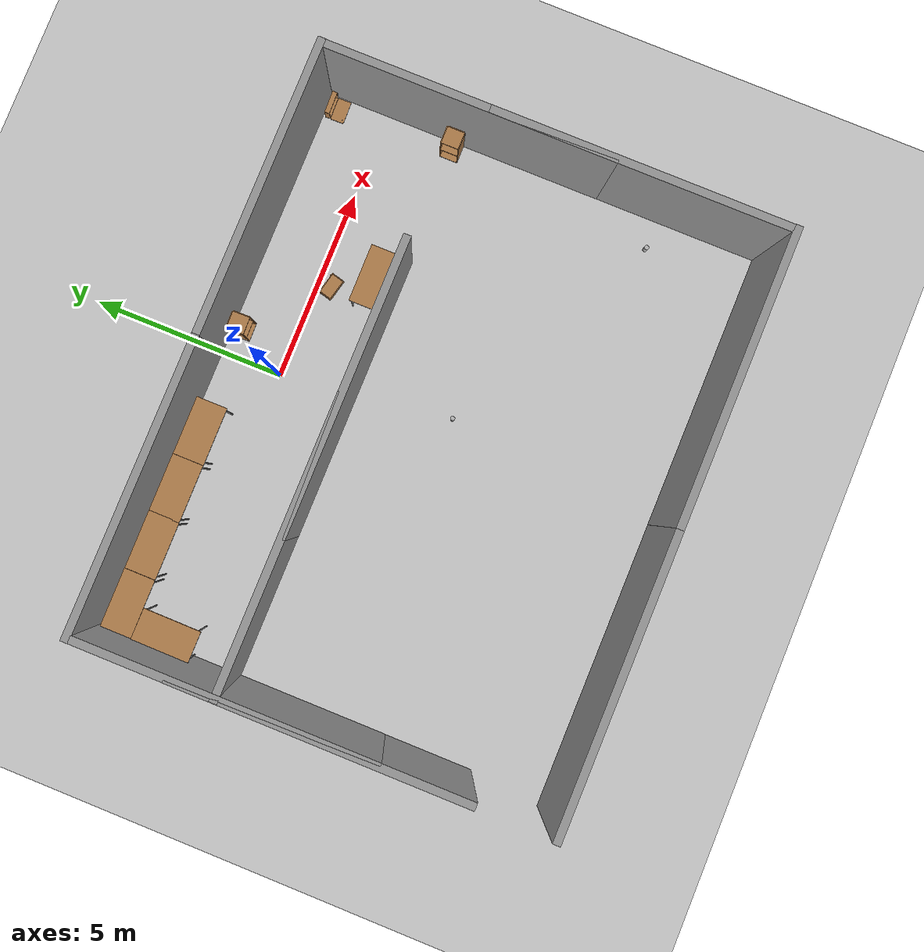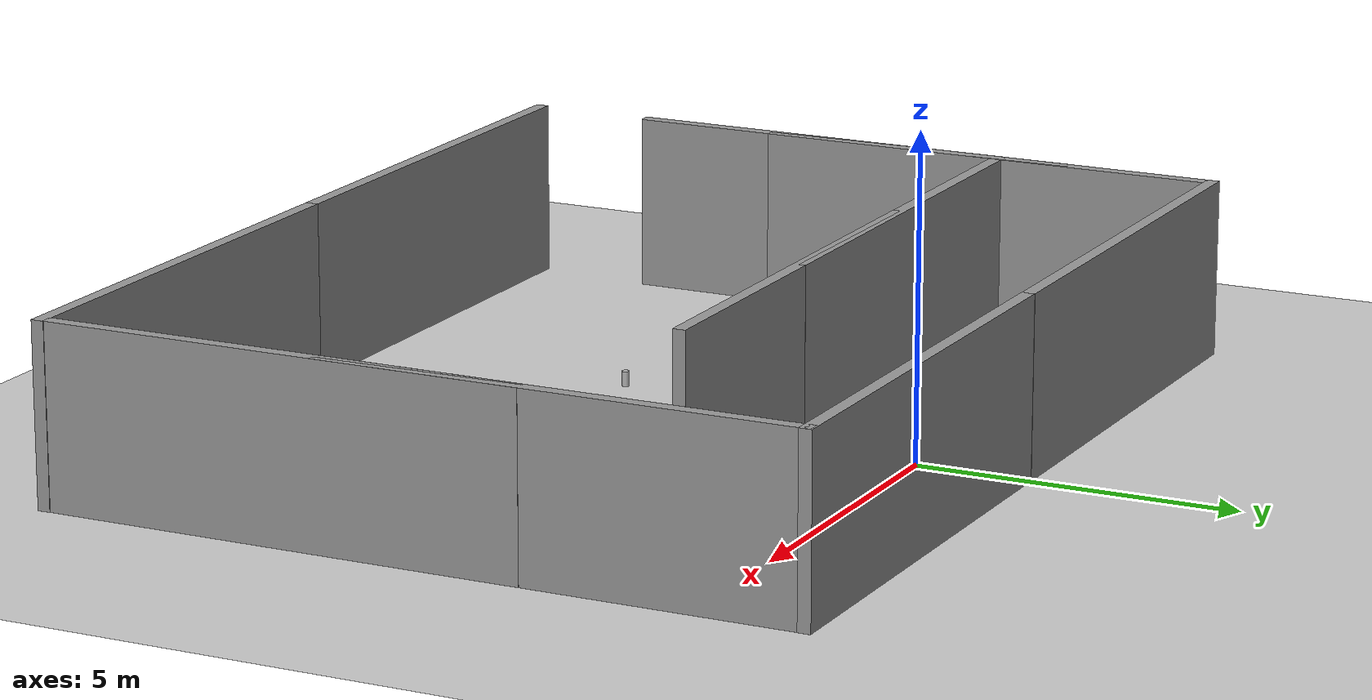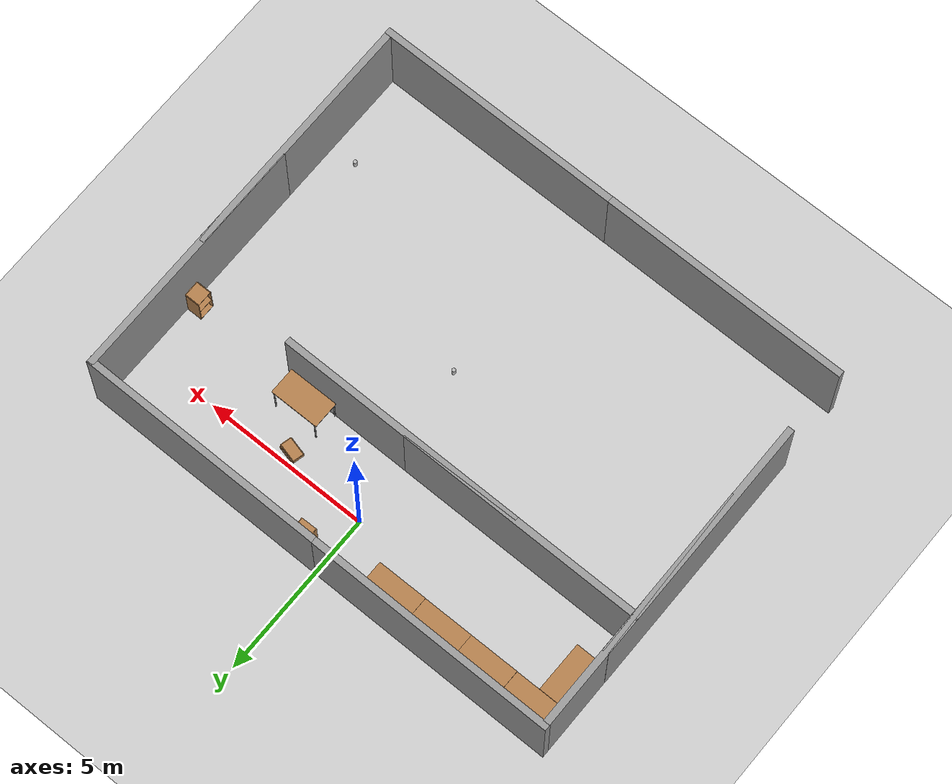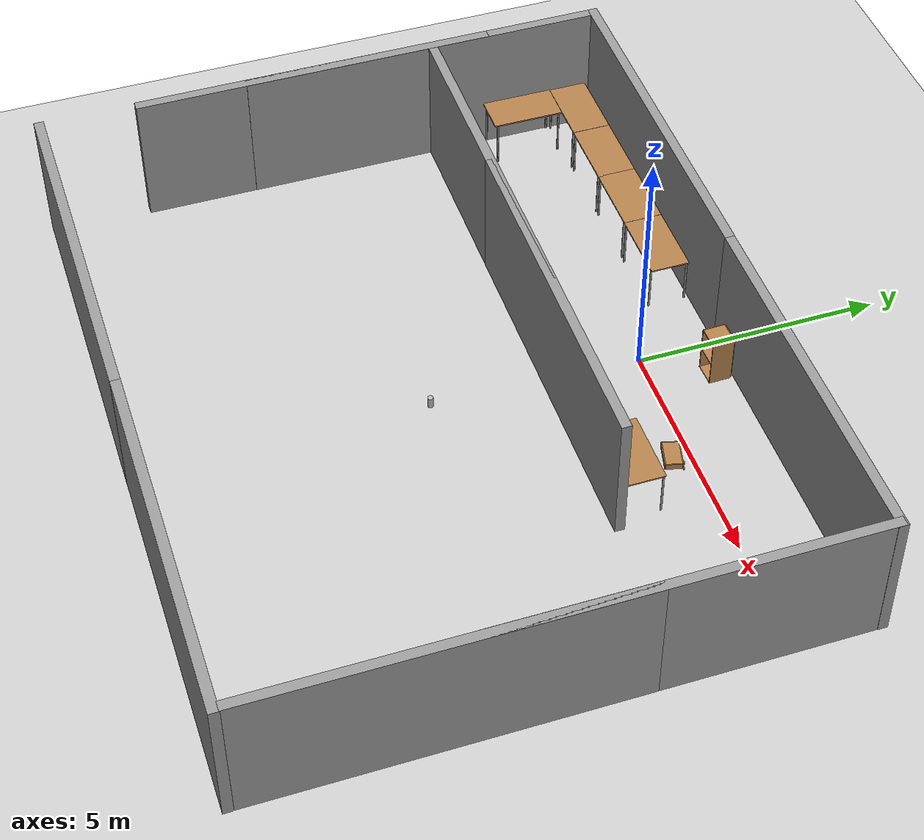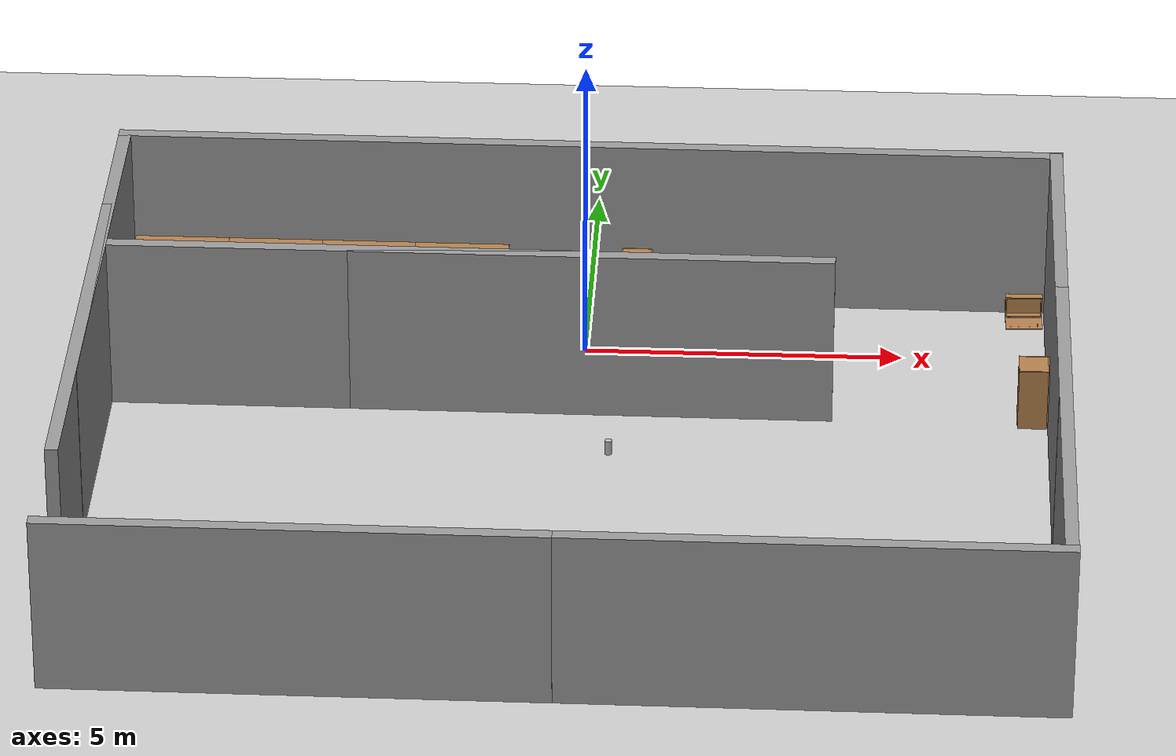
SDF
<sdf version="1.6">
 <world name="default">
  <light name="sun" type="directional">
   <pose>0 0 10 0 -0 0</pose>
   <diffuse>0.8 0.8 0.8 1</diffuse>
   <specular>0.2 0.2 0.2 1</specular>
   <attenuation>
    <range>1000</range>
    <constant>0.9</constant>
    <linear>0.01</linear>
    <quadratic>0.001</quadratic>
   </attenuation>
   <direction>-0.5 0.1 -0.9</direction>
  </light>
  <model name="ground_plane">
   <static>1</static>
   <link name="link">
    <collision name="collision">
     <geometry><plane><normal>0 0 1</normal><size>100 100</size></plane></geometry>
     <surface>
      <contact><collide_bitmask>65535</collide_bitmask></contact>
      <friction><ode><mu>100</mu><mu2>50</mu2></ode></friction>
     </surface>
    </collision>
    <visual name="visual">
     <cast_shadows>0</cast_shadows>
     <geometry><plane><normal>0 0 1</normal><size>100 100</size></plane></geometry>
     <material>
      <script><uri>file://media/materials/scripts/gazebo.material</uri><name>Gazebo/Grey</name></script>
     </material>
    </visual>
   </link>
  </model>
  <gravity>0 0 -9.8</gravity>
  <magnetic_field>6e-06 2.3e-05 -4.2e-05</magnetic_field>
  <atmosphere type="adiabatic"/>
  <physics name="default_physics" default="0" type="ode">
   <max_step_size>0.001</max_step_size>
   <real_time_factor>1</real_time_factor>
   <real_time_update_rate>1000</real_time_update_rate>
  </physics>
  <scene><ambient>0.4 0.4 0.4 1</ambient><background>0.7 0.7 0.7 1</background><shadows>1</shadows></scene>
  <spherical_coordinates>
   <surface_model>EARTH_WGS84</surface_model>
   <latitude_deg>0</latitude_deg>
   <longitude_deg>0</longitude_deg>
   <elevation>0</elevation>
   <heading_deg>0</heading_deg>
  </spherical_coordinates>
  <model name="beer">
   <link name="link">
    <pose>0 0 0.115 0 -0 0</pose>
    <inertial>
     <mass>0.39</mass>
     <inertia><ixx>0.00058</ixx><ixy>0</ixy><ixz>0</ixz><iyy>0.00058</iyy><iyz>0</iyz><izz>0.00019</izz></inertia>
    </inertial>
    <collision name="collision">
     <geometry><cylinder><radius>0.055</radius><length>0.23</length></cylinder></geometry>
    </collision>
    <visual name="visual">
     <geometry><cylinder><radius>0.055</radius><length>0.23</length></cylinder></geometry>
     <material>
      <script>
       <uri>model://beer/materials/scripts</uri>
       <uri>model://beer/materials/textures</uri>
       <name>Beer/Diffuse</name>
      </script>
     </material>
    </visual>
   </link>
   <pose>0.549078 -4.45967 0.774999 6e-06 1.8e-05 0.024753</pose>
  </model>
  <model name="grey_wall">
   <static>1</static>
   <link name="link">
    <pose>0 0 1.4 0 -0 0</pose>
    <collision name="collision"><geometry><box><size>7.5 0.2 2.8</size></box></geometry></collision>
    <visual name="visual">
     <cast_shadows>0</cast_shadows>
     <geometry><box><size>7.5 0.2 2.8</size></box></geometry>
     <material>
      <script>
       <uri>model://grey_wall/materials/scripts</uri>
       <uri>model://grey_wall/materials/textures</uri>
       <name>vrc/grey_wall</name>
      </script>
     </material>
    </visual>
   </link>
   <pose>-7.41366 -4.39541 0 0 -0 1.57193</pose>
  </model>
  <model name="grey_wall_clone">
   <static>1</static>
   <link name="link">
    <pose>0 0 1.4 0 -0 0</pose>
    <collision name="collision"><geometry><box><size>7.5 0.2 2.8</size></box></geometry></collision>
    <visual name="visual">
     <cast_shadows>0</cast_shadows>
     <geometry><box><size>7.5 0.2 2.8</size></box></geometry>
     <material>
      <script>
       <uri>model://grey_wall/materials/scripts</uri>
       <uri>model://grey_wall/materials/textures</uri>
       <name>vrc/grey_wall</name>
      </script>
     </material>
    </visual>
   </link>
   <pose>7.37096 -6.3197 0 0 -0 1.57193</pose>
  </model>
  <model name="grey_wall_clone_0">
   <static>1</static>
   <link name="link">
    <pose>0 0 1.4 0 -0 0</pose>
    <collision name="collision"><geometry><box><size>7.5 0.2 2.8</size></box></geometry></collision>
    <visual name="visual">
     <cast_shadows>0</cast_shadows>
     <geometry><box><size>7.5 0.2 2.8</size></box></geometry>
     <material>
      <script>
       <uri>model://grey_wall/materials/scripts</uri>
       <uri>model://grey_wall/materials/textures</uri>
       <name>vrc/grey_wall</name>
      </script>
     </material>
    </visual>
   </link>
   <pose>-3.76241 -10.1067 0 0 0 -0.004205</pose>
  </model>
  <model name="grey_wall_clone_0_clone">
   <static>1</static>
   <link name="link">
    <pose>0 0 1.4 0 -0 0</pose>
    <collision name="collision"><geometry><box><size>7.5 0.2 2.8</size></box></geometry></collision>
    <visual name="visual">
     <cast_shadows>0</cast_shadows>
     <geometry><box><size>7.5 0.2 2.8</size></box></geometry>
     <material>
      <script>
       <uri>model://grey_wall/materials/scripts</uri>
       <uri>model://grey_wall/materials/textures</uri>
       <name>vrc/grey_wall</name>
      </script>
     </material>
    </visual>
   </link>
   <pose>3.73447 -10.1357 0 0 0 -0.004205</pose>
  </model>
  <model name="grey_wall_clone_1">
   <static>1</static>
   <link name="link">
    <pose>0 0 1.4 0 -0 0</pose>
    <collision name="collision"><geometry><box><size>7.5 0.2 2.8</size></box></geometry></collision>
    <visual name="visual">
     <cast_shadows>0</cast_shadows>
     <geometry><box><size>7.5 0.2 2.8</size></box></geometry>
     <material>
      <script>
       <uri>model://grey_wall/materials/scripts</uri>
       <uri>model://grey_wall/materials/textures</uri>
       <name>vrc/grey_wall</name>
      </script>
     </material>
    </visual>
   </link>
   <pose>-7.41164 -2.10091 0 0 -0 1.57193</pose>
  </model>
  <model name="grey_wall_clone_clone">
   <static>1</static>
   <link name="link">
    <pose>0 0 1.4 0 -0 0</pose>
    <collision name="collision"><geometry><box><size>7.5 0.2 2.8</size></box></geometry></collision>
    <visual name="visual">
     <cast_shadows>0</cast_shadows>
     <geometry><box><size>7.5 0.2 2.8</size></box></geometry>
     <material>
      <script>
       <uri>model://grey_wall/materials/scripts</uri>
       <uri>model://grey_wall/materials/textures</uri>
       <name>vrc/grey_wall</name>
      </script>
     </material>
    </visual>
   </link>
   <pose>7.36311 -2.01977 0 0 -0 1.57193</pose>
  </model>
  <model name="grey_wall_clone_0_clone_0">
   <static>1</static>
   <link name="link">
    <pose>0 0 1.4 0 -0 0</pose>
    <collision name="collision"><geometry><box><size>7.5 0.2 2.8</size></box></geometry></collision>
    <visual name="visual">
     <cast_shadows>0</cast_shadows>
     <geometry><box><size>7.5 0.2 2.8</size></box></geometry>
     <material>
      <script>
       <uri>model://grey_wall/materials/scripts</uri>
       <uri>model://grey_wall/materials/textures</uri>
       <name>vrc/grey_wall</name>
      </script>
     </material>
    </visual>
   </link>
   <pose>-3.7582 -1.88238 0 0 0 -0.004205</pose>
  </model>
  <model name="grey_wall_clone_0_clone_0_clone">
   <static>1</static>
   <link name="link">
    <pose>0 0 1.4 0 -0 0</pose>
    <collision name="collision"><geometry><box><size>7.5 0.2 2.8</size></box></geometry></collision>
    <visual name="visual">
     <cast_shadows>0</cast_shadows>
     <geometry><box><size>7.5 0.2 2.8</size></box></geometry>
     <material>
      <script>
       <uri>model://grey_wall/materials/scripts</uri>
       <uri>model://grey_wall/materials/textures</uri>
       <name>vrc/grey_wall</name>
      </script>
     </material>
    </visual>
   </link>
   <pose>0.167951 -1.90145 0 0 0 -0.004205</pose>
  </model>
  <model name="grey_wall_clone_0_clone_0_clone_0">
   <static>1</static>
   <link name="link">
    <pose>0 0 1.4 0 -0 0</pose>
    <collision name="collision"><geometry><box><size>7.5 0.2 2.8</size></box></geometry></collision>
    <visual name="visual">
     <cast_shadows>0</cast_shadows>
     <geometry><box><size>7.5 0.2 2.8</size></box></geometry>
     <material>
      <script>
       <uri>model://grey_wall/materials/scripts</uri>
       <uri>model://grey_wall/materials/textures</uri>
       <name>vrc/grey_wall</name>
      </script>
     </material>
    </visual>
   </link>
   <pose>-3.76819 1.7103 0 0 0 -0.004205</pose>
  </model>
  <model name="grey_wall_clone_0_clone_0_clone_1">
   <static>1</static>
   <link name="link">
    <pose>0 0 1.4 0 -0 0</pose>
    <collision name="collision"><geometry><box><size>7.5 0.2 2.8</size></box></geometry></collision>
    <visual name="visual">
     <cast_shadows>0</cast_shadows>
     <geometry><box><size>7.5 0.2 2.8</size></box></geometry>
     <material>
      <script>
       <uri>model://grey_wall/materials/scripts</uri>
       <uri>model://grey_wall/materials/textures</uri>
       <name>vrc/grey_wall</name>
      </script>
     </material>
    </visual>
   </link>
   <pose>3.71597 1.67408 0 0 0 -0.004205</pose>
  </model>
  <model name="table">
   <static>1</static>
   <link name="link">
    <collision name="surface">
     <pose>0 0 1 0 -0 0</pose>
     <geometry><box><size>1.5 0.8 0.03</size></box></geometry>
     <surface><friction><ode><mu>0.6</mu><mu2>0.6</mu2></ode></friction></surface>
    </collision>
    <visual name="visual1">
     <pose>0 0 1 0 -0 0</pose>
     <geometry><box><size>1.5 0.8 0.03</size></box></geometry>
     <material>
      <script><uri>file://media/materials/scripts/gazebo.material</uri><name>Gazebo/Wood</name></script>
     </material>
    </visual>
    <collision name="front_left_leg">
     <pose>0.68 0.38 0.5 0 -0 0</pose>
     <geometry><cylinder><radius>0.02</radius><length>1</length></cylinder></geometry>
    </collision>
    <visual name="front_left_leg">
     <pose>0.68 0.38 0.5 0 -0 0</pose>
     <geometry><cylinder><radius>0.02</radius><length>1</length></cylinder></geometry>
     <material>
      <script><uri>file://media/materials/scripts/gazebo.material</uri><name>Gazebo/Grey</name></script>
     </material>
    </visual>
    <collision name="front_right_leg">
     <pose>0.68 -0.38 0.5 0 -0 0</pose>
     <geometry><cylinder><radius>0.02</radius><length>1</length></cylinder></geometry>
    </collision>
    <visual name="front_right_leg">
     <pose>0.68 -0.38 0.5 0 -0 0</pose>
     <geometry><cylinder><radius>0.02</radius><length>1</length></cylinder></geometry>
     <material>
      <script><uri>file://media/materials/scripts/gazebo.material</uri><name>Gazebo/Grey</name></script>
     </material>
    </visual>
    <collision name="back_right_leg">
     <pose>-0.68 -0.38 0.5 0 -0 0</pose>
     <geometry><cylinder><radius>0.02</radius><length>1</length></cylinder></geometry>
    </collision>
    <visual name="back_right_leg">
     <pose>-0.68 -0.38 0.5 0 -0 0</pose>
     <geometry><cylinder><radius>0.02</radius><length>1</length></cylinder></geometry>
     <material>
      <script><uri>file://media/materials/scripts/gazebo.material</uri><name>Gazebo/Grey</name></script>
     </material>
    </visual>
    <collision name="back_left_leg">
     <pose>-0.68 0.38 0.5 0 -0 0</pose>
     <geometry><cylinder><radius>0.02</radius><length>1</length></cylinder></geometry>
    </collision>
    <visual name="back_left_leg">
     <pose>-0.68 0.38 0.5 0 -0 0</pose>
     <geometry><cylinder><radius>0.02</radius><length>1</length></cylinder></geometry>
     <material>
      <script><uri>file://media/materials/scripts/gazebo.material</uri><name>Gazebo/Grey</name></script>
     </material>
    </visual>
   </link>
   <pose>-6.53226 1.12972 0.030085 0 -0 0</pose>
  </model>
  <model name="table_clone">
   <static>1</static>
   <link name="link">
    <collision name="surface">
     <pose>0 0 1 0 -0 0</pose>
     <geometry><box><size>1.5 0.8 0.03</size></box></geometry>
     <surface><friction><ode><mu>0.6</mu><mu2>0.6</mu2></ode></friction></surface>
    </collision>
    <visual name="visual1">
     <pose>0 0 1 0 -0 0</pose>
     <geometry><box><size>1.5 0.8 0.03</size></box></geometry>
     <material>
      <script><uri>file://media/materials/scripts/gazebo.material</uri><name>Gazebo/Wood</name></script>
     </material>
    </visual>
    <collision name="front_left_leg">
     <pose>0.68 0.38 0.5 0 -0 0</pose>
     <geometry><cylinder><radius>0.02</radius><length>1</length></cylinder></geometry>
    </collision>
    <visual name="front_left_leg">
     <pose>0.68 0.38 0.5 0 -0 0</pose>
     <geometry><cylinder><radius>0.02</radius><length>1</length></cylinder></geometry>
     <material>
      <script><uri>file://media/materials/scripts/gazebo.material</uri><name>Gazebo/Grey</name></script>
     </material>
    </visual>
    <collision name="front_right_leg">
     <pose>0.68 -0.38 0.5 0 -0 0</pose>
     <geometry><cylinder><radius>0.02</radius><length>1</length></cylinder></geometry>
    </collision>
    <visual name="front_right_leg">
     <pose>0.68 -0.38 0.5 0 -0 0</pose>
     <geometry><cylinder><radius>0.02</radius><length>1</length></cylinder></geometry>
     <material>
      <script><uri>file://media/materials/scripts/gazebo.material</uri><name>Gazebo/Grey</name></script>
     </material>
    </visual>
    <collision name="back_right_leg">
     <pose>-0.68 -0.38 0.5 0 -0 0</pose>
     <geometry><cylinder><radius>0.02</radius><length>1</length></cylinder></geometry>
    </collision>
    <visual name="back_right_leg">
     <pose>-0.68 -0.38 0.5 0 -0 0</pose>
     <geometry><cylinder><radius>0.02</radius><length>1</length></cylinder></geometry>
     <material>
      <script><uri>file://media/materials/scripts/gazebo.material</uri><name>Gazebo/Grey</name></script>
     </material>
    </visual>
    <collision name="back_left_leg">
     <pose>-0.68 0.38 0.5 0 -0 0</pose>
     <geometry><cylinder><radius>0.02</radius><length>1</length></cylinder></geometry>
    </collision>
    <visual name="back_left_leg">
     <pose>-0.68 0.38 0.5 0 -0 0</pose>
     <geometry><cylinder><radius>0.02</radius><length>1</length></cylinder></geometry>
     <material>
      <script><uri>file://media/materials/scripts/gazebo.material</uri><name>Gazebo/Grey</name></script>
     </material>
    </visual>
   </link>
   <pose>-5.0285 1.12607 0.030085 0 -0 0</pose>
  </model>
  <model name="table_clone_0">
   <static>1</static>
   <link name="link">
    <collision name="surface">
     <pose>0 0 1 0 -0 0</pose>
     <geometry><box><size>1.5 0.8 0.03</size></box></geometry>
     <surface><friction><ode><mu>0.6</mu><mu2>0.6</mu2></ode></friction></surface>
    </collision>
    <visual name="visual1">
     <pose>0 0 1 0 -0 0</pose>
     <geometry><box><size>1.5 0.8 0.03</size></box></geometry>
     <material>
      <script><uri>file://media/materials/scripts/gazebo.material</uri><name>Gazebo/Wood</name></script>
     </material>
    </visual>
    <collision name="front_left_leg">
     <pose>0.68 0.38 0.5 0 -0 0</pose>
     <geometry><cylinder><radius>0.02</radius><length>1</length></cylinder></geometry>
    </collision>
    <visual name="front_left_leg">
     <pose>0.68 0.38 0.5 0 -0 0</pose>
     <geometry><cylinder><radius>0.02</radius><length>1</length></cylinder></geometry>
     <material>
      <script><uri>file://media/materials/scripts/gazebo.material</uri><name>Gazebo/Grey</name></script>
     </material>
    </visual>
    <collision name="front_right_leg">
     <pose>0.68 -0.38 0.5 0 -0 0</pose>
     <geometry><cylinder><radius>0.02</radius><length>1</length></cylinder></geometry>
    </collision>
    <visual name="front_right_leg">
     <pose>0.68 -0.38 0.5 0 -0 0</pose>
     <geometry><cylinder><radius>0.02</radius><length>1</length></cylinder></geometry>
     <material>
      <script><uri>file://media/materials/scripts/gazebo.material</uri><name>Gazebo/Grey</name></script>
     </material>
    </visual>
    <collision name="back_right_leg">
     <pose>-0.68 -0.38 0.5 0 -0 0</pose>
     <geometry><cylinder><radius>0.02</radius><length>1</length></cylinder></geometry>
    </collision>
    <visual name="back_right_leg">
     <pose>-0.68 -0.38 0.5 0 -0 0</pose>
     <geometry><cylinder><radius>0.02</radius><length>1</length></cylinder></geometry>
     <material>
      <script><uri>file://media/materials/scripts/gazebo.material</uri><name>Gazebo/Grey</name></script>
     </material>
    </visual>
    <collision name="back_left_leg">
     <pose>-0.68 0.38 0.5 0 -0 0</pose>
     <geometry><cylinder><radius>0.02</radius><length>1</length></cylinder></geometry>
    </collision>
    <visual name="back_left_leg">
     <pose>-0.68 0.38 0.5 0 -0 0</pose>
     <geometry><cylinder><radius>0.02</radius><length>1</length></cylinder></geometry>
     <material>
      <script><uri>file://media/materials/scripts/gazebo.material</uri><name>Gazebo/Grey</name></script>
     </material>
    </visual>
   </link>
   <pose>-3.54713 1.12464 0.030085 0 -0 0</pose>
  </model>
  <model name="table_clone_1">
   <static>1</static>
   <link name="link">
    <collision name="surface">
     <pose>0 0 1 0 -0 0</pose>
     <geometry><box><size>1.5 0.8 0.03</size></box></geometry>
     <surface><friction><ode><mu>0.6</mu><mu2>0.6</mu2></ode></friction></surface>
    </collision>
    <visual name="visual1">
     <pose>0 0 1 0 -0 0</pose>
     <geometry><box><size>1.5 0.8 0.03</size></box></geometry>
     <material>
      <script><uri>file://media/materials/scripts/gazebo.material</uri><name>Gazebo/Wood</name></script>
     </material>
    </visual>
    <collision name="front_left_leg">
     <pose>0.68 0.38 0.5 0 -0 0</pose>
     <geometry><cylinder><radius>0.02</radius><length>1</length></cylinder></geometry>
    </collision>
    <visual name="front_left_leg">
     <pose>0.68 0.38 0.5 0 -0 0</pose>
     <geometry><cylinder><radius>0.02</radius><length>1</length></cylinder></geometry>
     <material>
      <script><uri>file://media/materials/scripts/gazebo.material</uri><name>Gazebo/Grey</name></script>
     </material>
    </visual>
    <collision name="front_right_leg">
     <pose>0.68 -0.38 0.5 0 -0 0</pose>
     <geometry><cylinder><radius>0.02</radius><length>1</length></cylinder></geometry>
    </collision>
    <visual name="front_right_leg">
     <pose>0.68 -0.38 0.5 0 -0 0</pose>
     <geometry><cylinder><radius>0.02</radius><length>1</length></cylinder></geometry>
     <material>
      <script><uri>file://media/materials/scripts/gazebo.material</uri><name>Gazebo/Grey</name></script>
     </material>
    </visual>
    <collision name="back_right_leg">
     <pose>-0.68 -0.38 0.5 0 -0 0</pose>
     <geometry><cylinder><radius>0.02</radius><length>1</length></cylinder></geometry>
    </collision>
    <visual name="back_right_leg">
     <pose>-0.68 -0.38 0.5 0 -0 0</pose>
     <geometry><cylinder><radius>0.02</radius><length>1</length></cylinder></geometry>
     <material>
      <script><uri>file://media/materials/scripts/gazebo.material</uri><name>Gazebo/Grey</name></script>
     </material>
    </visual>
    <collision name="back_left_leg">
     <pose>-0.68 0.38 0.5 0 -0 0</pose>
     <geometry><cylinder><radius>0.02</radius><length>1</length></cylinder></geometry>
    </collision>
    <visual name="back_left_leg">
     <pose>-0.68 0.38 0.5 0 -0 0</pose>
     <geometry><cylinder><radius>0.02</radius><length>1</length></cylinder></geometry>
     <material>
      <script><uri>file://media/materials/scripts/gazebo.material</uri><name>Gazebo/Grey</name></script>
     </material>
    </visual>
   </link>
   <pose>-2.04592 1.12009 0.030085 0 -0 0</pose>
  </model>
  <model name="table_clone_2">
   <static>1</static>
   <link name="link">
    <collision name="surface">
     <pose>0 0 1 0 -0 0</pose>
     <geometry><box><size>1.5 0.8 0.03</size></box></geometry>
     <surface><friction><ode><mu>0.6</mu><mu2>0.6</mu2></ode></friction></surface>
    </collision>
    <visual name="visual1">
     <pose>0 0 1 0 -0 0</pose>
     <geometry><box><size>1.5 0.8 0.03</size></box></geometry>
     <material>
      <script><uri>file://media/materials/scripts/gazebo.material</uri><name>Gazebo/Wood</name></script>
     </material>
    </visual>
    <collision name="front_left_leg">
     <pose>0.68 0.38 0.5 0 -0 0</pose>
     <geometry><cylinder><radius>0.02</radius><length>1</length></cylinder></geometry>
    </collision>
    <visual name="front_left_leg">
     <pose>0.68 0.38 0.5 0 -0 0</pose>
     <geometry><cylinder><radius>0.02</radius><length>1</length></cylinder></geometry>
     <material>
      <script><uri>file://media/materials/scripts/gazebo.material</uri><name>Gazebo/Grey</name></script>
     </material>
    </visual>
    <collision name="front_right_leg">
     <pose>0.68 -0.38 0.5 0 -0 0</pose>
     <geometry><cylinder><radius>0.02</radius><length>1</length></cylinder></geometry>
    </collision>
    <visual name="front_right_leg">
     <pose>0.68 -0.38 0.5 0 -0 0</pose>
     <geometry><cylinder><radius>0.02</radius><length>1</length></cylinder></geometry>
     <material>
      <script><uri>file://media/materials/scripts/gazebo.material</uri><name>Gazebo/Grey</name></script>
     </material>
    </visual>
    <collision name="back_right_leg">
     <pose>-0.68 -0.38 0.5 0 -0 0</pose>
     <geometry><cylinder><radius>0.02</radius><length>1</length></cylinder></geometry>
    </collision>
    <visual name="back_right_leg">
     <pose>-0.68 -0.38 0.5 0 -0 0</pose>
     <geometry><cylinder><radius>0.02</radius><length>1</length></cylinder></geometry>
     <material>
      <script><uri>file://media/materials/scripts/gazebo.material</uri><name>Gazebo/Grey</name></script>
     </material>
    </visual>
    <collision name="back_left_leg">
     <pose>-0.68 0.38 0.5 0 -0 0</pose>
     <geometry><cylinder><radius>0.02</radius><length>1</length></cylinder></geometry>
    </collision>
    <visual name="back_left_leg">
     <pose>-0.68 0.38 0.5 0 -0 0</pose>
     <geometry><cylinder><radius>0.02</radius><length>1</length></cylinder></geometry>
     <material>
      <script><uri>file://media/materials/scripts/gazebo.material</uri><name>Gazebo/Grey</name></script>
     </material>
    </visual>
   </link>
   <pose>-6.89823 -0.022688 0.030085 0 0 -1.57663</pose>
  </model>
  <model name="wooden_case_metal_peg">
   <link name="wooden_case::base">
    <pose>0 0 0.024 0 -0 0</pose>
    <inertial>
     <pose>-0.022184 0 0.171592 0 -0 0</pose>
     <mass>3.96264</mass>
     <inertia>
      <ixx>0.213536</ixx>
      <ixy>0</ixy>
      <ixz>0.000779377</ixz>
      <iyy>0.0708943</iyy>
      <iyz>0</iyz>
      <izz>0.154604</izz>
     </inertia>
    </inertial>
    <collision name="collision_back">
     <pose>-0.053975 0 0.1778 0 -0 0</pose>
     <geometry><box><size>0.01905 0.5461 0.3175</size></box></geometry>
     <surface>
      <contact>
       <poissons_ratio>0.347</poissons_ratio>
       <elastic_modulus>8.8e+09</elastic_modulus>
       <ode><kp>100000</kp><kd>100</kd><max_vel>100</max_vel><min_depth>0.001</min_depth></ode>
      </contact>
      <friction>
       <torsional>
        <coefficient>1</coefficient>
        <use_patch_radius>0</use_patch_radius>
        <surface_radius>0.01</surface_radius>
       </torsional>
      </friction>
     </surface>
    </collision>
    <visual name="visual_back">
     <pose>-0.053975 0 0.1778 0 -0 0</pose>
     <geometry><box><size>0.01905 0.5461 0.3175</size></box></geometry>
     <material>
      <script><uri>file://media/materials/scripts/gazebo.material</uri><name>Gazebo/Wood</name></script>
     </material>
    </visual>
    <collision name="collision_bottom">
     <pose>0 0 0.009525 0 -0 0</pose>
     <geometry><box><size>0.127 0.5842 0.01905</size></box></geometry>
     <surface>
      <contact>
       <poissons_ratio>0.347</poissons_ratio>
       <elastic_modulus>8.8e+09</elastic_modulus>
       <ode><kp>100000</kp><kd>100</kd><max_vel>100</max_vel><min_depth>0.001</min_depth></ode>
      </contact>
      <friction>
       <torsional>
        <coefficient>1</coefficient>
        <use_patch_radius>0</use_patch_radius>
        <surface_radius>0.01</surface_radius>
       </torsional>
      </friction>
     </surface>
    </collision>
    <visual name="visual_bottom">
     <pose>0 0 0.009525 0 -0 0</pose>
     <geometry><box><size>0.127 0.5842 0.01905</size></box></geometry>
     <material>
      <script><uri>file://media/materials/scripts/gazebo.material</uri><name>Gazebo/Wood</name></script>
     </material>
    </visual>
    <collision name="collision_top">
     <pose>0 0 0.346075 0 -0 0</pose>
     <geometry><box><size>0.127 0.5842 0.01905</size></box></geometry>
     <surface>
      <contact>
       <poissons_ratio>0.347</poissons_ratio>
       <elastic_modulus>8.8e+09</elastic_modulus>
       <ode><kp>100000</kp><kd>100</kd><max_vel>100</max_vel><min_depth>0.001</min_depth></ode>
      </contact>
      <friction>
       <torsional>
        <coefficient>1</coefficient>
        <use_patch_radius>0</use_patch_radius>
        <surface_radius>0.01</surface_radius>
       </torsional>
      </friction>
     </surface>
    </collision>
    <visual name="visual_top">
     <pose>0 0 0.346075 0 -0 0</pose>
     <geometry><box><size>0.127 0.5842 0.01905</size></box></geometry>
     <material>
      <script><uri>file://media/materials/scripts/gazebo.material</uri><name>Gazebo/Wood</name></script>
     </material>
    </visual>
    <collision name="collision_left">
     <pose>0 -0.282575 0.1778 0 -0 0</pose>
     <geometry><box><size>0.127 0.01905 0.3175</size></box></geometry>
     <surface>
      <contact>
       <poissons_ratio>0.347</poissons_ratio>
       <elastic_modulus>8.8e+09</elastic_modulus>
       <ode><kp>100000</kp><kd>100</kd><max_vel>100</max_vel><min_depth>0.001</min_depth></ode>
      </contact>
      <friction>
       <torsional>
        <coefficient>1</coefficient>
        <use_patch_radius>0</use_patch_radius>
        <surface_radius>0.01</surface_radius>
       </torsional>
      </friction>
     </surface>
    </collision>
    <visual name="visual_left">
     <pose>0 -0.282575 0.1778 0 -0 0</pose>
     <geometry><box><size>0.127 0.01905 0.3175</size></box></geometry>
     <material>
      <script><uri>file://media/materials/scripts/gazebo.material</uri><name>Gazebo/Wood</name></script>
     </material>
    </visual>
    <collision name="collision_right">
     <pose>0 0.282575 0.1778 0 -0 0</pose>
     <geometry><box><size>0.127 0.01905 0.3175</size></box></geometry>
     <surface>
      <contact>
       <poissons_ratio>0.347</poissons_ratio>
       <elastic_modulus>8.8e+09</elastic_modulus>
       <ode><kp>100000</kp><kd>100</kd><max_vel>100</max_vel><min_depth>0.001</min_depth></ode>
      </contact>
      <friction>
       <torsional>
        <coefficient>1</coefficient>
        <use_patch_radius>0</use_patch_radius>
        <surface_radius>0.01</surface_radius>
       </torsional>
      </friction>
     </surface>
    </collision>
    <visual name="visual_right">
     <pose>0 0.282575 0.1778 0 -0 0</pose>
     <geometry><box><size>0.127 0.01905 0.3175</size></box></geometry>
     <material>
      <script><uri>file://media/materials/scripts/gazebo.material</uri><name>Gazebo/Wood</name></script>
     </material>
    </visual>
    <collision name="collision_block_left">
     <pose>0.0095 -0.2151 -0.012 0 -0 0</pose>
     <geometry><box><size>0.108 0.05 0.024</size></box></geometry>
     <surface>
      <contact>
       <poissons_ratio>0.347</poissons_ratio>
       <elastic_modulus>8.8e+09</elastic_modulus>
       <ode><kp>100000</kp><kd>100</kd><max_vel>100</max_vel><min_depth>0.001</min_depth></ode>
      </contact>
      <friction>
       <torsional>
        <coefficient>1</coefficient>
        <use_patch_radius>0</use_patch_radius>
        <surface_radius>0.01</surface_radius>
       </torsional>
      </friction>
     </surface>
    </collision>
    <visual name="visual_block_left">
     <pose>0.0095 -0.2151 -0.012 0 -0 0</pose>
     <geometry><box><size>0.108 0.05 0.024</size></box></geometry>
     <material>
      <script><uri>file://media/materials/scripts/gazebo.material</uri><name>Gazebo/Wood</name></script>
     </material>
    </visual>
    <collision name="collision_block_right">
     <pose>0.0095 0.2151 -0.012 0 -0 0</pose>
     <geometry><box><size>0.108 0.05 0.024</size></box></geometry>
     <surface>
      <contact>
       <poissons_ratio>0.347</poissons_ratio>
       <elastic_modulus>8.8e+09</elastic_modulus>
       <ode><kp>100000</kp><kd>100</kd><max_vel>100</max_vel><min_depth>0.001</min_depth></ode>
      </contact>
      <friction>
       <torsional>
        <coefficient>1</coefficient>
        <use_patch_radius>0</use_patch_radius>
        <surface_radius>0.01</surface_radius>
       </torsional>
      </friction>
     </surface>
    </collision>
    <visual name="visual_block_right">
     <pose>0.0095 0.2151 -0.012 0 -0 0</pose>
     <geometry><box><size>0.108 0.05 0.024</size></box></geometry>
     <material>
      <script><uri>file://media/materials/scripts/gazebo.material</uri><name>Gazebo/Wood</name></script>
     </material>
    </visual>
   </link>
   <link name="wooden_case::lid">
    <pose>0.243775 0 0.009525 0 -0 0</pose>
    <inertial>
     <mass>1.97874</mass>
     <inertia>
      <ixx>0.0563367</ixx>
      <ixy>0</ixy>
      <ixz>0</ixz>
      <iyy>0.020911</iyy>
      <iyz>0</iyz>
      <izz>0.0771281</izz>
     </inertia>
    </inertial>
    <collision name="collision">
     <geometry><box><size>0.3556 0.5842 0.01905</size></box></geometry>
     <surface>
      <contact>
       <poissons_ratio>0.347</poissons_ratio>
       <elastic_modulus>8.8e+09</elastic_modulus>
       <ode><kp>100000</kp><kd>100</kd><max_vel>100</max_vel><min_depth>0.001</min_depth></ode>
      </contact>
      <friction>
       <torsional>
        <coefficient>1</coefficient>
        <use_patch_radius>0</use_patch_radius>
        <surface_radius>0.01</surface_radius>
       </torsional>
      </friction>
     </surface>
    </collision>
    <visual name="visual">
     <geometry><box><size>0.3556 0.5842 0.01905</size></box></geometry>
     <material>
      <script><uri>file://media/materials/scripts/gazebo.material</uri><name>Gazebo/Wood</name></script>
     </material>
    </visual>
    <visual name="tee_nut_1">
     <pose>0.122 -0.216 0 0 -0 0</pose>
     <geometry><cylinder><radius>0.00635</radius><length>0.0192405</length></cylinder></geometry>
     <material>
      <script><uri>file://media/materials/scripts/gazebo.material</uri><name>Gazebo/Grey</name></script>
     </material>
    </visual>
    <visual name="tee_nut_2">
     <pose>0.122 -0.088 0 0 -0 0</pose>
     <geometry><cylinder><radius>0.00635</radius><length>0.0192405</length></cylinder></geometry>
     <material>
      <script><uri>file://media/materials/scripts/gazebo.material</uri><name>Gazebo/Grey</name></script>
     </material>
    </visual>
    <visual name="tee_nut_3">
     <pose>0.122 0.088 0 0 -0 0</pose>
     <geometry><cylinder><radius>0.00635</radius><length>0.0192405</length></cylinder></geometry>
     <material>
      <script><uri>file://media/materials/scripts/gazebo.material</uri><name>Gazebo/Grey</name></script>
     </material>
    </visual>
    <visual name="tee_nut_4">
     <pose>0.122 0.216 0 0 -0 0</pose>
     <geometry><cylinder><radius>0.00635</radius><length>0.0192405</length></cylinder></geometry>
     <material>
      <script><uri>file://media/materials/scripts/gazebo.material</uri><name>Gazebo/Grey</name></script>
     </material>
    </visual>
   </link>
   <joint name="wooden_case::lid_hinge" type="revolute">
    <pose>-0.1778 0 0.01905 0 -0 0</pose>
    <parent>wooden_case::base</parent>
    <child>wooden_case::lid</child>
    <axis>
     <xyz>0 1 0</xyz>
     <limit><upper>0.523599</upper><lower>-1.5708</lower></limit>
     <use_parent_model_frame>0</use_parent_model_frame>
     <dynamics><spring_reference>0</spring_reference><spring_stiffness>0</spring_stiffness></dynamics>
    </axis>
   </joint>
   <link name="peg::link">
    <pose>0.365774 0.216 0.05005 0 -0 0</pose>
    <inertial>
     <mass>0.0121</mass>
     <inertia>
      <ixx>3.90898e-06</ixx>
      <ixy>0</ixy>
      <ixz>0</ixz>
      <iyy>3.90898e-06</iyy>
      <iyz>0</iyz>
      <izz>6.58845e-08</izz>
     </inertia>
    </inertial>
    <collision name="collision">
     <geometry><cylinder><radius>0.0033</radius><length>0.062</length></cylinder></geometry>
     <surface>
      <contact>
       <poissons_ratio>0.305</poissons_ratio>
       <elastic_modulus>2e+11</elastic_modulus>
       <ode><kp>100000</kp><kd>100</kd><max_vel>100</max_vel><min_depth>0.001</min_depth></ode>
      </contact>
      <friction>
       <torsional>
        <coefficient>1</coefficient>
        <use_patch_radius>0</use_patch_radius>
        <surface_radius>0.01</surface_radius>
       </torsional>
      </friction>
     </surface>
    </collision>
    <visual name="visual">
     <geometry><cylinder><radius>0.0033</radius><length>0.062</length></cylinder></geometry>
     <material>
      <script><uri>file://media/materials/scripts/gazebo.material</uri><name>Gazebo/Grey</name></script>
     </material>
    </visual>
   </link>
   <joint name="case_peg" type="revolute">
    <child>peg::link</child>
    <parent>wooden_case::lid</parent>
    <axis>
     <xyz>0 0 1</xyz>
     <limit><upper>0</upper><lower>0</lower></limit>
     <use_parent_model_frame>0</use_parent_model_frame>
     <dynamics><spring_reference>0</spring_reference><spring_stiffness>0</spring_stiffness></dynamics>
    </axis>
   </joint>
   <pose>6.93341 1.42855 -0.001059 -2e-06 -0.000393 -1.54609</pose>
  </model>
  <model name="cabinet">
   <static>1</static>
   <link name="cabinet_bottom_plate">
    <inertial>
     <pose>0 0 -1 0 -0 0</pose>
     <inertia><ixx>2.05</ixx><ixy>0</ixy><ixz>0</ixz><iyy>2.05</iyy><iyz>0</iyz><izz>2.05</izz></inertia>
     <mass>25</mass>
    </inertial>
    <collision name="cabinet_bottom_plate_geom">
     <pose>0 0 0.01 0 -0 0</pose>
     <geometry><box><size>0.45 0.45 0.02</size></box></geometry>
    </collision>
    <visual name="cabinet_bottom_plate_geom_visual">
     <pose>0 0 0.01 0 -0 0</pose>
     <geometry><box><size>0.45 0.45 0.02</size></box></geometry>
     <material>
      <script><uri>file://media/materials/scripts/gazebo.material</uri><name>Gazebo/Wood</name></script>
     </material>
    </visual>
    <collision name="cabinet_bottom_plate_geom_cabinet_back_plate">
     <pose>0.235 0 0.51 0 -0 0</pose>
     <geometry><box><size>0.02 0.45 1.02</size></box></geometry>
    </collision>
    <visual name="cabinet_bottom_plate_geom_cabinet_back_plate_visual">
     <pose>0.235 0 0.51 0 -0 0</pose>
     <geometry><box><size>0.02 0.45 1.02</size></box></geometry>
     <material>
      <script><uri>file://media/materials/scripts/gazebo.material</uri><name>Gazebo/Wood</name></script>
     </material>
    </visual>
    <collision name="cabinet_bottom_plate_geom_cabinet_left_plate">
     <pose>0 0.235 0.51 0 -0 0</pose>
     <geometry><box><size>0.45 0.02 1.02</size></box></geometry>
    </collision>
    <visual name="cabinet_bottom_plate_geom_cabinet_left_plate_visual">
     <pose>0 0.235 0.51 0 -0 0</pose>
     <geometry><box><size>0.45 0.02 1.02</size></box></geometry>
     <material>
      <script><uri>file://media/materials/scripts/gazebo.material</uri><name>Gazebo/Wood</name></script>
     </material>
    </visual>
    <collision name="cabinet_bottom_plate_geom_cabinet_middle_plate">
     <pose>0 0 0.51 0 -0 0</pose>
     <geometry><box><size>0.45 0.45 0.02</size></box></geometry>
    </collision>
    <visual name="cabinet_bottom_plate_geom_cabinet_middle_plate_visual">
     <pose>0 0 0.51 0 -0 0</pose>
     <geometry><box><size>0.45 0.45 0.02</size></box></geometry>
     <material>
      <script><uri>file://media/materials/scripts/gazebo.material</uri><name>Gazebo/Wood</name></script>
     </material>
    </visual>
    <collision name="cabinet_bottom_plate_geom_cabinet_right_plate">
     <pose>0 -0.235 0.51 0 -0 0</pose>
     <geometry><box><size>0.45 0.02 1.02</size></box></geometry>
    </collision>
    <visual name="cabinet_bottom_plate_geom_cabinet_right_plate_visual">
     <pose>0 -0.235 0.51 0 -0 0</pose>
     <geometry><box><size>0.45 0.02 1.02</size></box></geometry>
     <material>
      <script><uri>file://media/materials/scripts/gazebo.material</uri><name>Gazebo/Wood</name></script>
     </material>
    </visual>
    <collision name="cabinet_bottom_plate_geom_cabinet_top_plate">
     <pose>0 0 1.01 0 -0 0</pose>
     <geometry><box><size>0.45 0.45 0.02</size></box></geometry>
    </collision>
    <visual name="cabinet_bottom_plate_geom_cabinet_top_plate_visual">
     <pose>0 0 1.01 0 -0 0</pose>
     <geometry><box><size>0.45 0.45 0.02</size></box></geometry>
     <material>
      <script><uri>file://media/materials/scripts/gazebo.material</uri><name>Gazebo/Wood</name></script>
     </material>
    </visual>
   </link>
   <pose>0.751827 1.29452 0 0 -0 1.59066</pose>
  </model>
  <model name="table_clone_1_clone">
   <static>1</static>
   <link name="link">
    <collision name="surface">
     <pose>0 0 1 0 -0 0</pose>
     <geometry><box><size>1.5 0.8 0.03</size></box></geometry>
     <surface><friction><ode><mu>0.6</mu><mu2>0.6</mu2></ode></friction></surface>
    </collision>
    <visual name="visual1">
     <pose>0 0 1 0 -0 0</pose>
     <geometry><box><size>1.5 0.8 0.03</size></box></geometry>
     <material>
      <script><uri>file://media/materials/scripts/gazebo.material</uri><name>Gazebo/Wood</name></script>
     </material>
    </visual>
    <collision name="front_left_leg">
     <pose>0.68 0.38 0.5 0 -0 0</pose>
     <geometry><cylinder><radius>0.02</radius><length>1</length></cylinder></geometry>
    </collision>
    <visual name="front_left_leg">
     <pose>0.68 0.38 0.5 0 -0 0</pose>
     <geometry><cylinder><radius>0.02</radius><length>1</length></cylinder></geometry>
     <material>
      <script><uri>file://media/materials/scripts/gazebo.material</uri><name>Gazebo/Grey</name></script>
     </material>
    </visual>
    <collision name="front_right_leg">
     <pose>0.68 -0.38 0.5 0 -0 0</pose>
     <geometry><cylinder><radius>0.02</radius><length>1</length></cylinder></geometry>
    </collision>
    <visual name="front_right_leg">
     <pose>0.68 -0.38 0.5 0 -0 0</pose>
     <geometry><cylinder><radius>0.02</radius><length>1</length></cylinder></geometry>
     <material>
      <script><uri>file://media/materials/scripts/gazebo.material</uri><name>Gazebo/Grey</name></script>
     </material>
    </visual>
    <collision name="back_right_leg">
     <pose>-0.68 -0.38 0.5 0 -0 0</pose>
     <geometry><cylinder><radius>0.02</radius><length>1</length></cylinder></geometry>
    </collision>
    <visual name="back_right_leg">
     <pose>-0.68 -0.38 0.5 0 -0 0</pose>
     <geometry><cylinder><radius>0.02</radius><length>1</length></cylinder></geometry>
     <material>
      <script><uri>file://media/materials/scripts/gazebo.material</uri><name>Gazebo/Grey</name></script>
     </material>
    </visual>
    <collision name="back_left_leg">
     <pose>-0.68 0.38 0.5 0 -0 0</pose>
     <geometry><cylinder><radius>0.02</radius><length>1</length></cylinder></geometry>
    </collision>
    <visual name="back_left_leg">
     <pose>-0.68 0.38 0.5 0 -0 0</pose>
     <geometry><cylinder><radius>0.02</radius><length>1</length></cylinder></geometry>
     <material>
      <script><uri>file://media/materials/scripts/gazebo.material</uri><name>Gazebo/Grey</name></script>
     </material>
    </visual>
   </link>
   <pose>3.0353 -1.40948 0.030085 0 -0 0</pose>
  </model>
  <model name="wooden_case_metal_peg_clone">
   <link name="wooden_case::base">
    <pose>0 0 0.024 0 -0 0</pose>
    <inertial>
     <pose>-0.022184 0 0.171592 0 -0 0</pose>
     <mass>3.96264</mass>
     <inertia>
      <ixx>0.213536</ixx>
      <ixy>0</ixy>
      <ixz>0.000779377</ixz>
      <iyy>0.0708943</iyy>
      <iyz>0</iyz>
      <izz>0.154604</izz>
     </inertia>
    </inertial>
    <collision name="collision_back">
     <pose>-0.053975 0 0.1778 0 -0 0</pose>
     <geometry><box><size>0.01905 0.5461 0.3175</size></box></geometry>
     <surface>
      <contact>
       <poissons_ratio>0.347</poissons_ratio>
       <elastic_modulus>8.8e+09</elastic_modulus>
       <ode><kp>100000</kp><kd>100</kd><max_vel>100</max_vel><min_depth>0.001</min_depth></ode>
      </contact>
      <friction>
       <torsional>
        <coefficient>1</coefficient>
        <use_patch_radius>0</use_patch_radius>
        <surface_radius>0.01</surface_radius>
       </torsional>
      </friction>
     </surface>
    </collision>
    <visual name="visual_back">
     <pose>-0.053975 0 0.1778 0 -0 0</pose>
     <geometry><box><size>0.01905 0.5461 0.3175</size></box></geometry>
     <material>
      <script><uri>file://media/materials/scripts/gazebo.material</uri><name>Gazebo/Wood</name></script>
     </material>
    </visual>
    <collision name="collision_bottom">
     <pose>0 0 0.009525 0 -0 0</pose>
     <geometry><box><size>0.127 0.5842 0.01905</size></box></geometry>
     <surface>
      <contact>
       <poissons_ratio>0.347</poissons_ratio>
       <elastic_modulus>8.8e+09</elastic_modulus>
       <ode><kp>100000</kp><kd>100</kd><max_vel>100</max_vel><min_depth>0.001</min_depth></ode>
      </contact>
      <friction>
       <torsional>
        <coefficient>1</coefficient>
        <use_patch_radius>0</use_patch_radius>
        <surface_radius>0.01</surface_radius>
       </torsional>
      </friction>
     </surface>
    </collision>
    <visual name="visual_bottom">
     <pose>0 0 0.009525 0 -0 0</pose>
     <geometry><box><size>0.127 0.5842 0.01905</size></box></geometry>
     <material>
      <script><uri>file://media/materials/scripts/gazebo.material</uri><name>Gazebo/Wood</name></script>
     </material>
    </visual>
    <collision name="collision_top">
     <pose>0 0 0.346075 0 -0 0</pose>
     <geometry><box><size>0.127 0.5842 0.01905</size></box></geometry>
     <surface>
      <contact>
       <poissons_ratio>0.347</poissons_ratio>
       <elastic_modulus>8.8e+09</elastic_modulus>
       <ode><kp>100000</kp><kd>100</kd><max_vel>100</max_vel><min_depth>0.001</min_depth></ode>
      </contact>
      <friction>
       <torsional>
        <coefficient>1</coefficient>
        <use_patch_radius>0</use_patch_radius>
        <surface_radius>0.01</surface_radius>
       </torsional>
      </friction>
     </surface>
    </collision>
    <visual name="visual_top">
     <pose>0 0 0.346075 0 -0 0</pose>
     <geometry><box><size>0.127 0.5842 0.01905</size></box></geometry>
     <material>
      <script><uri>file://media/materials/scripts/gazebo.material</uri><name>Gazebo/Wood</name></script>
     </material>
    </visual>
    <collision name="collision_left">
     <pose>0 -0.282575 0.1778 0 -0 0</pose>
     <geometry><box><size>0.127 0.01905 0.3175</size></box></geometry>
     <surface>
      <contact>
       <poissons_ratio>0.347</poissons_ratio>
       <elastic_modulus>8.8e+09</elastic_modulus>
       <ode><kp>100000</kp><kd>100</kd><max_vel>100</max_vel><min_depth>0.001</min_depth></ode>
      </contact>
      <friction>
       <torsional>
        <coefficient>1</coefficient>
        <use_patch_radius>0</use_patch_radius>
        <surface_radius>0.01</surface_radius>
       </torsional>
      </friction>
     </surface>
    </collision>
    <visual name="visual_left">
     <pose>0 -0.282575 0.1778 0 -0 0</pose>
     <geometry><box><size>0.127 0.01905 0.3175</size></box></geometry>
     <material>
      <script><uri>file://media/materials/scripts/gazebo.material</uri><name>Gazebo/Wood</name></script>
     </material>
    </visual>
    <collision name="collision_right">
     <pose>0 0.282575 0.1778 0 -0 0</pose>
     <geometry><box><size>0.127 0.01905 0.3175</size></box></geometry>
     <surface>
      <contact>
       <poissons_ratio>0.347</poissons_ratio>
       <elastic_modulus>8.8e+09</elastic_modulus>
       <ode><kp>100000</kp><kd>100</kd><max_vel>100</max_vel><min_depth>0.001</min_depth></ode>
      </contact>
      <friction>
       <torsional>
        <coefficient>1</coefficient>
        <use_patch_radius>0</use_patch_radius>
        <surface_radius>0.01</surface_radius>
       </torsional>
      </friction>
     </surface>
    </collision>
    <visual name="visual_right">
     <pose>0 0.282575 0.1778 0 -0 0</pose>
     <geometry><box><size>0.127 0.01905 0.3175</size></box></geometry>
     <material>
      <script><uri>file://media/materials/scripts/gazebo.material</uri><name>Gazebo/Wood</name></script>
     </material>
    </visual>
    <collision name="collision_block_left">
     <pose>0.0095 -0.2151 -0.012 0 -0 0</pose>
     <geometry><box><size>0.108 0.05 0.024</size></box></geometry>
     <surface>
      <contact>
       <poissons_ratio>0.347</poissons_ratio>
       <elastic_modulus>8.8e+09</elastic_modulus>
       <ode><kp>100000</kp><kd>100</kd><max_vel>100</max_vel><min_depth>0.001</min_depth></ode>
      </contact>
      <friction>
       <torsional>
        <coefficient>1</coefficient>
        <use_patch_radius>0</use_patch_radius>
        <surface_radius>0.01</surface_radius>
       </torsional>
      </friction>
     </surface>
    </collision>
    <visual name="visual_block_left">
     <pose>0.0095 -0.2151 -0.012 0 -0 0</pose>
     <geometry><box><size>0.108 0.05 0.024</size></box></geometry>
     <material>
      <script><uri>file://media/materials/scripts/gazebo.material</uri><name>Gazebo/Wood</name></script>
     </material>
    </visual>
    <collision name="collision_block_right">
     <pose>0.0095 0.2151 -0.012 0 -0 0</pose>
     <geometry><box><size>0.108 0.05 0.024</size></box></geometry>
     <surface>
      <contact>
       <poissons_ratio>0.347</poissons_ratio>
       <elastic_modulus>8.8e+09</elastic_modulus>
       <ode><kp>100000</kp><kd>100</kd><max_vel>100</max_vel><min_depth>0.001</min_depth></ode>
      </contact>
      <friction>
       <torsional>
        <coefficient>1</coefficient>
        <use_patch_radius>0</use_patch_radius>
        <surface_radius>0.01</surface_radius>
       </torsional>
      </friction>
     </surface>
    </collision>
    <visual name="visual_block_right">
     <pose>0.0095 0.2151 -0.012 0 -0 0</pose>
     <geometry><box><size>0.108 0.05 0.024</size></box></geometry>
     <material>
      <script><uri>file://media/materials/scripts/gazebo.material</uri><name>Gazebo/Wood</name></script>
     </material>
    </visual>
   </link>
   <link name="wooden_case::lid">
    <pose>0.243775 0 0.009525 0 -0 0</pose>
    <inertial>
     <mass>1.97874</mass>
     <inertia>
      <ixx>0.0563367</ixx>
      <ixy>0</ixy>
      <ixz>0</ixz>
      <iyy>0.020911</iyy>
      <iyz>0</iyz>
      <izz>0.0771281</izz>
     </inertia>
    </inertial>
    <collision name="collision">
     <geometry><box><size>0.3556 0.5842 0.01905</size></box></geometry>
     <surface>
      <contact>
       <poissons_ratio>0.347</poissons_ratio>
       <elastic_modulus>8.8e+09</elastic_modulus>
       <ode><kp>100000</kp><kd>100</kd><max_vel>100</max_vel><min_depth>0.001</min_depth></ode>
      </contact>
      <friction>
       <torsional>
        <coefficient>1</coefficient>
        <use_patch_radius>0</use_patch_radius>
        <surface_radius>0.01</surface_radius>
       </torsional>
      </friction>
     </surface>
    </collision>
    <visual name="visual">
     <geometry><box><size>0.3556 0.5842 0.01905</size></box></geometry>
     <material>
      <script><uri>file://media/materials/scripts/gazebo.material</uri><name>Gazebo/Wood</name></script>
     </material>
    </visual>
    <visual name="tee_nut_1">
     <pose>0.122 -0.216 0 0 -0 0</pose>
     <geometry><cylinder><radius>0.00635</radius><length>0.0192405</length></cylinder></geometry>
     <material>
      <script><uri>file://media/materials/scripts/gazebo.material</uri><name>Gazebo/Grey</name></script>
     </material>
    </visual>
    <visual name="tee_nut_2">
     <pose>0.122 -0.088 0 0 -0 0</pose>
     <geometry><cylinder><radius>0.00635</radius><length>0.0192405</length></cylinder></geometry>
     <material>
      <script><uri>file://media/materials/scripts/gazebo.material</uri><name>Gazebo/Grey</name></script>
     </material>
    </visual>
    <visual name="tee_nut_3">
     <pose>0.122 0.088 0 0 -0 0</pose>
     <geometry><cylinder><radius>0.00635</radius><length>0.0192405</length></cylinder></geometry>
     <material>
      <script><uri>file://media/materials/scripts/gazebo.material</uri><name>Gazebo/Grey</name></script>
     </material>
    </visual>
    <visual name="tee_nut_4">
     <pose>0.122 0.216 0 0 -0 0</pose>
     <geometry><cylinder><radius>0.00635</radius><length>0.0192405</length></cylinder></geometry>
     <material>
      <script><uri>file://media/materials/scripts/gazebo.material</uri><name>Gazebo/Grey</name></script>
     </material>
    </visual>
   </link>
   <joint name="wooden_case::lid_hinge" type="revolute">
    <pose>-0.1778 0 0.01905 0 -0 0</pose>
    <parent>wooden_case::base</parent>
    <child>wooden_case::lid</child>
    <axis>
     <xyz>0 1 0</xyz>
     <limit><upper>0.523599</upper><lower>-1.5708</lower></limit>
     <use_parent_model_frame>0</use_parent_model_frame>
     <dynamics><spring_reference>0</spring_reference><spring_stiffness>0</spring_stiffness></dynamics>
    </axis>
   </joint>
   <link name="peg::link">
    <pose>0.365774 0.216 0.05005 0 -0 0</pose>
    <inertial>
     <mass>0.0121</mass>
     <inertia>
      <ixx>3.90898e-06</ixx>
      <ixy>0</ixy>
      <ixz>0</ixz>
      <iyy>3.90898e-06</iyy>
      <iyz>0</iyz>
      <izz>6.58845e-08</izz>
     </inertia>
    </inertial>
    <collision name="collision">
     <geometry><cylinder><radius>0.0033</radius><length>0.062</length></cylinder></geometry>
     <surface>
      <contact>
       <poissons_ratio>0.305</poissons_ratio>
       <elastic_modulus>2e+11</elastic_modulus>
       <ode><kp>100000</kp><kd>100</kd><max_vel>100</max_vel><min_depth>0.001</min_depth></ode>
      </contact>
      <friction>
       <torsional>
        <coefficient>1</coefficient>
        <use_patch_radius>0</use_patch_radius>
        <surface_radius>0.01</surface_radius>
       </torsional>
      </friction>
     </surface>
    </collision>
    <visual name="visual">
     <geometry><cylinder><radius>0.0033</radius><length>0.062</length></cylinder></geometry>
     <material>
      <script><uri>file://media/materials/scripts/gazebo.material</uri><name>Gazebo/Grey</name></script>
     </material>
    </visual>
   </link>
   <joint name="case_peg" type="revolute">
    <child>peg::link</child>
    <parent>wooden_case::lid</parent>
    <axis>
     <xyz>0 0 1</xyz>
     <limit><upper>0</upper><lower>0</lower></limit>
     <use_parent_model_frame>0</use_parent_model_frame>
     <dynamics><spring_reference>0</spring_reference><spring_stiffness>0</spring_stiffness></dynamics>
    </axis>
   </joint>
   <pose>2.63479 -0.156195 0.093399 -0.026544 1.57077 -1.84593</pose>
  </model>
  <model name="beer_clone">
   <link name="link">
    <pose>0 0 0.115 0 -0 0</pose>
    <inertial>
     <mass>0.39</mass>
     <inertia><ixx>0.00058</ixx><ixy>0</ixy><ixz>0</ixz><iyy>0.00058</iyy><iyz>0</iyz><izz>0.00019</izz></inertia>
    </inertial>
    <collision name="collision">
     <geometry><cylinder><radius>0.055</radius><length>0.23</length></cylinder></geometry>
    </collision>
    <visual name="visual">
     <geometry><cylinder><radius>0.055</radius><length>0.23</length></cylinder></geometry>
     <material>
      <script>
       <uri>model://beer/materials/scripts</uri>
       <uri>model://beer/materials/textures</uri>
       <name>Beer/Diffuse</name>
      </script>
     </material>
    </visual>
   </link>
   <pose>6.26137 -7.30967 0.775 -3e-06 -0 0.025318</pose>
  </model>
  <model name="cabinet_0">
   <static>1</static>
   <link name="cabinet_bottom_plate">
    <inertial>
     <pose>0 0 -1 0 -0 0</pose>
     <inertia><ixx>2.05</ixx><ixy>0</ixy><ixz>0</ixz><iyy>2.05</iyy><iyz>0</iyz><izz>2.05</izz></inertia>
     <mass>25</mass>
    </inertial>
    <collision name="cabinet_bottom_plate_geom">
     <pose>0 0 0.01 0 -0 0</pose>
     <geometry><box><size>0.45 0.45 0.02</size></box></geometry>
    </collision>
    <visual name="cabinet_bottom_plate_geom_visual">
     <pose>0 0 0.01 0 -0 0</pose>
     <geometry><box><size>0.45 0.45 0.02</size></box></geometry>
     <material>
      <script><uri>file://media/materials/scripts/gazebo.material</uri><name>Gazebo/Wood</name></script>
     </material>
    </visual>
    <collision name="cabinet_bottom_plate_geom_cabinet_back_plate">
     <pose>0.235 0 0.51 0 -0 0</pose>
     <geometry><box><size>0.02 0.45 1.02</size></box></geometry>
    </collision>
    <visual name="cabinet_bottom_plate_geom_cabinet_back_plate_visual">
     <pose>0.235 0 0.51 0 -0 0</pose>
     <geometry><box><size>0.02 0.45 1.02</size></box></geometry>
     <material>
      <script><uri>file://media/materials/scripts/gazebo.material</uri><name>Gazebo/Wood</name></script>
     </material>
    </visual>
    <collision name="cabinet_bottom_plate_geom_cabinet_left_plate">
     <pose>0 0.235 0.51 0 -0 0</pose>
     <geometry><box><size>0.45 0.02 1.02</size></box></geometry>
    </collision>
    <visual name="cabinet_bottom_plate_geom_cabinet_left_plate_visual">
     <pose>0 0.235 0.51 0 -0 0</pose>
     <geometry><box><size>0.45 0.02 1.02</size></box></geometry>
     <material>
      <script><uri>file://media/materials/scripts/gazebo.material</uri><name>Gazebo/Wood</name></script>
     </material>
    </visual>
    <collision name="cabinet_bottom_plate_geom_cabinet_middle_plate">
     <pose>0 0 0.51 0 -0 0</pose>
     <geometry><box><size>0.45 0.45 0.02</size></box></geometry>
    </collision>
    <visual name="cabinet_bottom_plate_geom_cabinet_middle_plate_visual">
     <pose>0 0 0.51 0 -0 0</pose>
     <geometry><box><size>0.45 0.45 0.02</size></box></geometry>
     <material>
      <script><uri>file://media/materials/scripts/gazebo.material</uri><name>Gazebo/Wood</name></script>
     </material>
    </visual>
    <collision name="cabinet_bottom_plate_geom_cabinet_right_plate">
     <pose>0 -0.235 0.51 0 -0 0</pose>
     <geometry><box><size>0.45 0.02 1.02</size></box></geometry>
    </collision>
    <visual name="cabinet_bottom_plate_geom_cabinet_right_plate_visual">
     <pose>0 -0.235 0.51 0 -0 0</pose>
     <geometry><box><size>0.45 0.02 1.02</size></box></geometry>
     <material>
      <script><uri>file://media/materials/scripts/gazebo.material</uri><name>Gazebo/Wood</name></script>
     </material>
    </visual>
    <collision name="cabinet_bottom_plate_geom_cabinet_top_plate">
     <pose>0 0 1.01 0 -0 0</pose>
     <geometry><box><size>0.45 0.45 0.02</size></box></geometry>
    </collision>
    <visual name="cabinet_bottom_plate_geom_cabinet_top_plate_visual">
     <pose>0 0 1.01 0 -0 0</pose>
     <geometry><box><size>0.45 0.45 0.02</size></box></geometry>
     <material>
      <script><uri>file://media/materials/scripts/gazebo.material</uri><name>Gazebo/Wood</name></script>
     </material>
    </visual>
   </link>
   <pose>7.01875 -1.85656 0 0 -0 0</pose>
  </model>
 </world>
</sdf>
